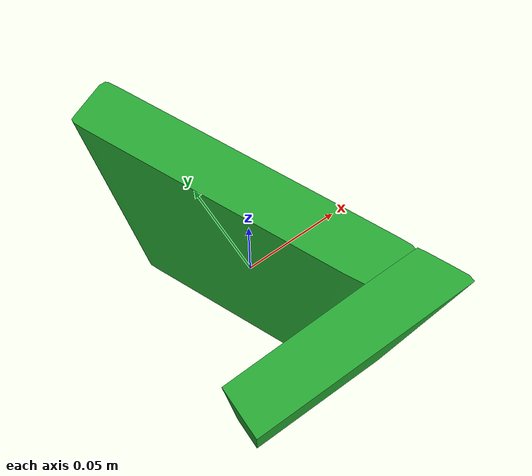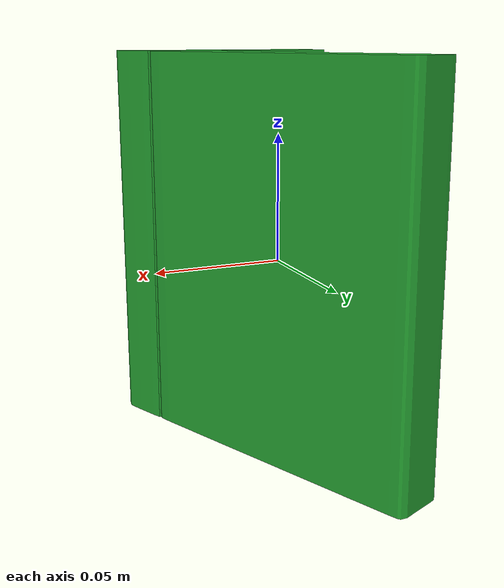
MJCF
<?xml version="1.0" ?>
<mujoco model="peg7">
    <asset>
        <mesh file="peg/0.stl" name="mesh_0"/>
        <mesh file="peg/1.stl" name="mesh_1"/>
        <texture file="../texture/green-wood.png" name="green-wood"/>
        <material name="greenwood_mat" texture="green-wood" texrepeat="1 1" specular="0.4" shininess="0.1"/>
    </asset>
    <worldbody>
        <body>
            <body name="object">
                <geom mesh="mesh_0" type="mesh" group="0" material="greenwood_mat"/>
                <geom mesh="mesh_1" type="mesh" group="0" material="greenwood_mat"/>
            </body>
        </body>
    </worldbody>
</mujoco>
